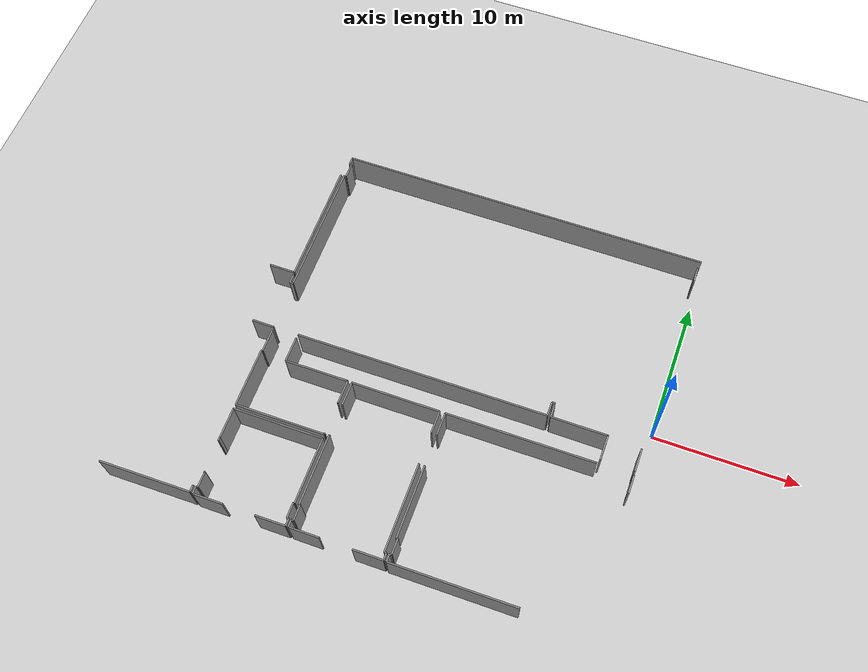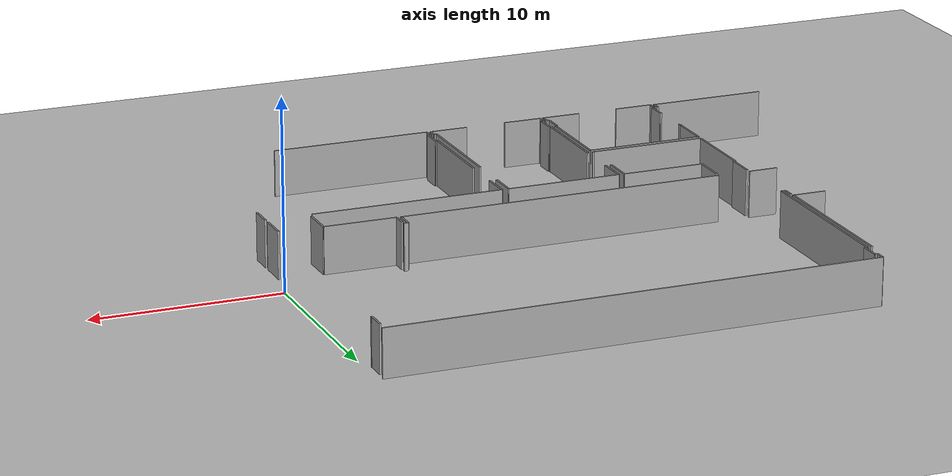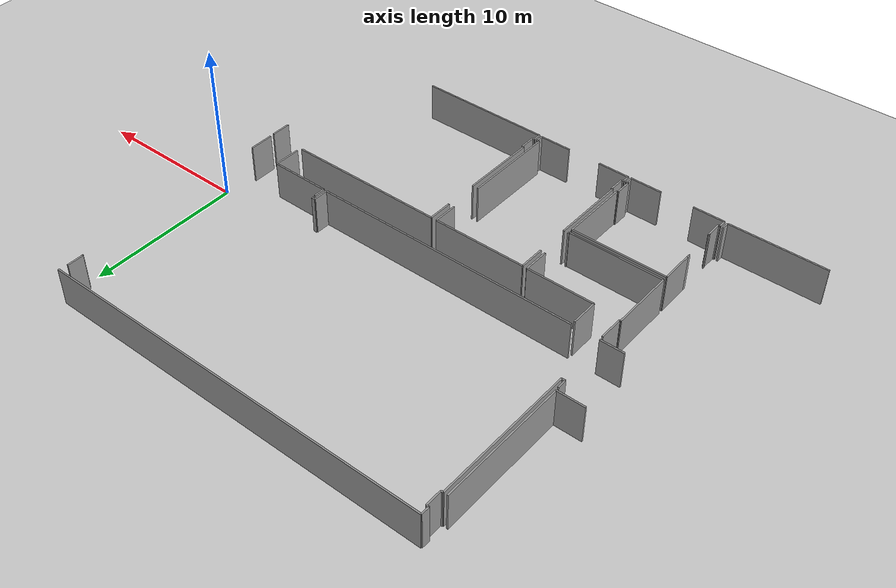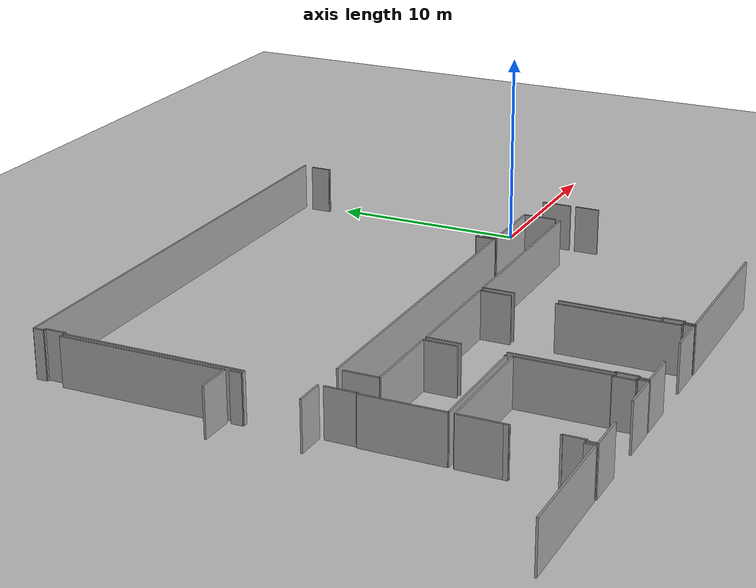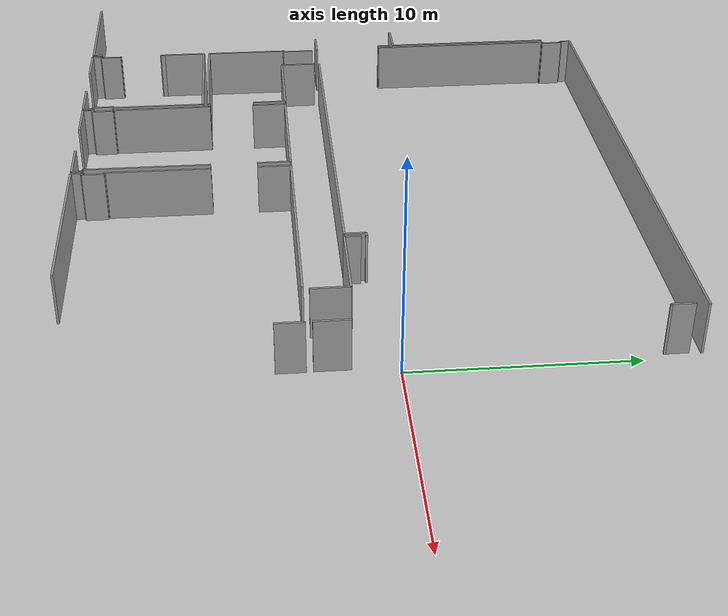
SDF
<sdf version="1.6">
 <world name="default">
  <model name="ground_plane">
   <static>1</static>
   <link name="link">
    <collision name="collision">
     <geometry><plane><normal>0 0 1</normal><size>100 100</size></plane></geometry>
     <surface><friction><ode><mu>100</mu><mu2>50</mu2></ode></friction></surface>
    </collision>
    <visual name="visual">
     <cast_shadows>0</cast_shadows>
     <geometry><plane><normal>0 0 1</normal><size>100 100</size></plane></geometry>
     <material>
      <script><uri>file://media/materials/scripts/gazebo.material</uri><name>Gazebo/Grey</name></script>
     </material>
    </visual>
   </link>
  </model>
  <model name="0510040946_A-40">
   <static>1</static>
   <link name="Wall_38">
    <collision name="Wall_38_Collision">
     <geometry><box><size>0.59646030045 0.1 2.5</size></box></geometry>
     <pose>0.298230150225 0 1.25 0 0 0</pose>
    </collision>
    <visual name="Wall_38_Visual">
     <pose>0.298230150225 0 1.25 0 0 0</pose>
     <geometry><box><size>0.59646030045 0.1 2.5</size></box></geometry>
     <material>
      <script><uri>file://media/materials/scripts/gazebo.material</uri><name>Gazebo/Grey</name></script>
      <ambient>1 1 1 1</ambient>
     </material>
    </visual>
    <pose>32.1014350305 -10.2270810478 0 0 0 -1.57079632679</pose>
   </link>
   <link name="Wall_39">
    <collision name="Wall_39_Collision">
     <geometry><box><size>0.224734776185 0.1 2.5</size></box></geometry>
     <pose>0.112367388092 0 1.25 0 0 0</pose>
    </collision>
    <visual name="Wall_39_Visual">
     <pose>0.112367388092 0 1.25 0 0 0</pose>
     <geometry><box><size>0.224734776185 0.1 2.5</size></box></geometry>
     <material>
      <script><uri>file://media/materials/scripts/gazebo.material</uri><name>Gazebo/Grey</name></script>
      <ambient>1 1 1 1</ambient>
     </material>
    </visual>
    <pose>32.1014350305 -10.8235413483 0 0 0 0.0</pose>
   </link>
   <link name="Wall_40">
    <collision name="Wall_40_Collision">
     <geometry><box><size>9.24266155983 0.1 2.5</size></box></geometry>
     <pose>4.62133077991 0 1.25 0 0 0</pose>
    </collision>
    <visual name="Wall_40_Visual">
     <pose>4.62133077991 0 1.25 0 0 0</pose>
     <geometry><box><size>9.24266155983 0.1 2.5</size></box></geometry>
     <material>
      <script><uri>file://media/materials/scripts/gazebo.material</uri><name>Gazebo/Grey</name></script>
      <ambient>1 1 1 1</ambient>
     </material>
    </visual>
    <pose>32.3261698067 -10.8235413483 0 0 0 1.57079632679</pose>
   </link>
   <link name="Wall_41">
    <collision name="Wall_41_Collision">
     <geometry><box><size>0.133293594678 0.1 2.5</size></box></geometry>
     <pose>0.0666467973392 0 1.25 0 0 0</pose>
    </collision>
    <visual name="Wall_41_Visual">
     <pose>0.0666467973392 0 1.25 0 0 0</pose>
     <geometry><box><size>0.133293594678 0.1 2.5</size></box></geometry>
     <material>
      <script><uri>file://media/materials/scripts/gazebo.material</uri><name>Gazebo/Grey</name></script>
      <ambient>1 1 1 1</ambient>
     </material>
    </visual>
    <pose>32.3261698067 -1.58087978846 0 0 0 0.0</pose>
   </link>
   <link name="Wall_42">
    <collision name="Wall_42_Collision">
     <geometry><box><size>1.05417350996 0.1 2.5</size></box></geometry>
     <pose>0.527086754979 0 1.25 0 0 0</pose>
    </collision>
    <visual name="Wall_42_Visual">
     <pose>0.527086754979 0 1.25 0 0 0</pose>
     <geometry><box><size>1.05417350996 0.1 2.5</size></box></geometry>
     <material>
      <script><uri>file://media/materials/scripts/gazebo.material</uri><name>Gazebo/Grey</name></script>
      <ambient>1 1 1 1</ambient>
     </material>
    </visual>
    <pose>32.4594634013 -1.58087978846 0 0 0 1.57079632679</pose>
   </link>
   <link name="Wall_43">
    <collision name="Wall_43_Collision">
     <geometry><box><size>0.153712499287 0.1 2.5</size></box></geometry>
     <pose>0.0768562496433 0 1.25 0 0 0</pose>
    </collision>
    <visual name="Wall_43_Visual">
     <pose>0.0768562496433 0 1.25 0 0 0</pose>
     <geometry><box><size>0.153712499287 0.1 2.5</size></box></geometry>
     <material>
      <script><uri>file://media/materials/scripts/gazebo.material</uri><name>Gazebo/Grey</name></script>
      <ambient>1 1 1 1</ambient>
     </material>
    </visual>
    <pose>32.4594634013 -0.526706278496 0 0 0 3.14159265359</pose>
   </link>
   <link name="Wall_44">
    <collision name="Wall_44_Collision">
     <geometry><box><size>0.522140560696 0.1 2.5</size></box></geometry>
     <pose>0.261070280348 0 1.25 0 0 0</pose>
    </collision>
    <visual name="Wall_44_Visual">
     <pose>0.261070280348 0 1.25 0 0 0</pose>
     <geometry><box><size>0.522140560696 0.1 2.5</size></box></geometry>
     <material>
      <script><uri>file://media/materials/scripts/gazebo.material</uri><name>Gazebo/Grey</name></script>
      <ambient>1 1 1 1</ambient>
     </material>
    </visual>
    <pose>32.305750902 -0.526706278496 0 0 0 1.57079632679</pose>
   </link>
   <link name="Wall_45">
    <collision name="Wall_45_Collision">
     <geometry><box><size>25.7516629993 0.1 2.5</size></box></geometry>
     <pose>12.8758314996 0 1.25 0 0 0</pose>
    </collision>
    <visual name="Wall_45_Visual">
     <pose>12.8758314996 0 1.25 0 0 0</pose>
     <geometry><box><size>25.7516629993 0.1 2.5</size></box></geometry>
     <material>
      <script><uri>file://media/materials/scripts/gazebo.material</uri><name>Gazebo/Grey</name></script>
      <ambient>1 1 1 1</ambient>
     </material>
    </visual>
    <pose>32.305750902 -0.00456571780059 0 0 0 0.0</pose>
   </link>
   <link name="Wall_48">
    <collision name="Wall_48_Collision">
     <geometry><box><size>1.04313969194 0.1 2.5</size></box></geometry>
     <pose>0.52156984597 0 1.25 0 0 0</pose>
    </collision>
    <visual name="Wall_48_Visual">
     <pose>0.52156984597 0 1.25 0 0 0</pose>
     <geometry><box><size>1.04313969194 0.1 2.5</size></box></geometry>
     <material>
      <script><uri>file://media/materials/scripts/gazebo.material</uri><name>Gazebo/Grey</name></script>
      <ambient>1 1 1 1</ambient>
     </material>
    </visual>
    <pose>57.9406076209 -0.53393533168 0 0 0 -1.57079632679</pose>
   </link>
   <link name="Wall_49">
    <collision name="Wall_49_Collision">
     <geometry><box><size>0.0630322707471 0.1 2.5</size></box></geometry>
     <pose>0.0315161353735 0 1.25 0 0 0</pose>
    </collision>
    <visual name="Wall_49_Visual">
     <pose>0.0315161353735 0 1.25 0 0 0</pose>
     <geometry><box><size>0.0630322707471 0.1 2.5</size></box></geometry>
     <material>
      <script><uri>file://media/materials/scripts/gazebo.material</uri><name>Gazebo/Grey</name></script>
      <ambient>1 1 1 1</ambient>
     </material>
    </visual>
    <pose>57.9406076209 -1.57707502362 0 0 0 0.0</pose>
   </link>
   <link name="Wall_54">
    <collision name="Wall_54_Collision">
     <geometry><box><size>0.227017635085 0.1 2.5</size></box></geometry>
     <pose>0.113508817543 0 1.25 0 0 0</pose>
    </collision>
    <visual name="Wall_54_Visual">
     <pose>0.113508817543 0 1.25 0 0 0</pose>
     <geometry><box><size>0.227017635085 0.1 2.5</size></box></geometry>
     <material>
      <script><uri>file://media/materials/scripts/gazebo.material</uri><name>Gazebo/Grey</name></script>
      <ambient>1 1 1 1</ambient>
     </material>
    </visual>
    <pose>51.7959124143 -13.3343056621 0 0 0 3.14159265359</pose>
   </link>
   <link name="Wall_55">
    <collision name="Wall_55_Collision">
     <geometry><box><size>0.969834556142 0.1 2.5</size></box></geometry>
     <pose>0.484917278071 0 1.25 0 0 0</pose>
    </collision>
    <visual name="Wall_55_Visual">
     <pose>0.484917278071 0 1.25 0 0 0</pose>
     <geometry><box><size>0.969834556142 0.1 2.5</size></box></geometry>
     <material>
      <script><uri>file://media/materials/scripts/gazebo.material</uri><name>Gazebo/Grey</name></script>
      <ambient>1 1 1 1</ambient>
     </material>
    </visual>
    <pose>51.5688947792 -13.3343056621 0 0 0 -1.57079632679</pose>
   </link>
   <link name="Wall_56">
    <collision name="Wall_56_Collision">
     <geometry><box><size>17.3943702163 0.1 2.5</size></box></geometry>
     <pose>8.69718510815 0 1.25 0 0 0</pose>
    </collision>
    <visual name="Wall_56_Visual">
     <pose>8.69718510815 0 1.25 0 0 0</pose>
     <geometry><box><size>17.3943702163 0.1 2.5</size></box></geometry>
     <material>
      <script><uri>file://media/materials/scripts/gazebo.material</uri><name>Gazebo/Grey</name></script>
      <ambient>1 1 1 1</ambient>
     </material>
    </visual>
    <pose>51.5688947792 -14.3041402183 0 0 0 3.14159265359</pose>
   </link>
   <link name="Wall_57">
    <collision name="Wall_57_Collision">
     <geometry><box><size>1.53446165748 0.1 2.5</size></box></geometry>
     <pose>0.767230828741 0 1.25 0 0 0</pose>
    </collision>
    <visual name="Wall_57_Visual">
     <pose>0.767230828741 0 1.25 0 0 0</pose>
     <geometry><box><size>1.53446165748 0.1 2.5</size></box></geometry>
     <material>
      <script><uri>file://media/materials/scripts/gazebo.material</uri><name>Gazebo/Grey</name></script>
      <ambient>1 1 1 1</ambient>
     </material>
    </visual>
    <pose>32.4150744783 -14.3041402183 0 0 0 3.14159265359</pose>
   </link>
   <link name="Wall_69">
    <collision name="Wall_69_Collision">
     <geometry><box><size>8.43808062297 0.1 2.5</size></box></geometry>
     <pose>4.21904031148 0 1.25 0 0 0</pose>
    </collision>
    <visual name="Wall_69_Visual">
     <pose>4.21904031148 0 1.25 0 0 0</pose>
     <geometry><box><size>8.43808062297 0.1 2.5</size></box></geometry>
     <material>
      <script><uri>file://media/materials/scripts/gazebo.material</uri><name>Gazebo/Grey</name></script>
      <ambient>1 1 1 1</ambient>
     </material>
    </visual>
    <pose>32.0701091333 -1.57327025879 0 0 0 -1.57079632679</pose>
   </link>
   <link name="Wall_70">
    <collision name="Wall_70_Collision">
     <geometry><box><size>1.78151772069 0.1 2.5</size></box></geometry>
     <pose>0.890758860346 0 1.25 0 0 0</pose>
    </collision>
    <visual name="Wall_70_Visual">
     <pose>0.890758860346 0 1.25 0 0 0</pose>
     <geometry><box><size>1.78151772069 0.1 2.5</size></box></geometry>
     <material>
      <script><uri>file://media/materials/scripts/gazebo.material</uri><name>Gazebo/Grey</name></script>
      <ambient>1 1 1 1</ambient>
     </material>
    </visual>
    <pose>32.0701091333 -10.0113508818 0 0 0 3.14159265359</pose>
   </link>
   <link name="Wall_87">
    <collision name="Wall_87_Collision">
     <geometry><box><size>0.47648338269 0.1 2.5</size></box></geometry>
     <pose>0.238241691345 0 1.25 0 0 0</pose>
    </collision>
    <visual name="Wall_87_Visual">
     <pose>0.238241691345 0 1.25 0 0 0</pose>
     <geometry><box><size>0.47648338269 0.1 2.5</size></box></geometry>
     <material>
      <script><uri>file://media/materials/scripts/gazebo.material</uri><name>Gazebo/Grey</name></script>
      <ambient>1 1 1 1</ambient>
     </material>
    </visual>
    <pose>32.1046056678 -26.16993348 0 0 0 -1.57079632679</pose>
   </link>
   <link name="Wall_88">
    <collision name="Wall_88_Collision">
     <geometry><box><size>6.29013112321 0.1 2.5</size></box></geometry>
     <pose>3.14506556161 0 1.25 0 0 0</pose>
    </collision>
    <visual name="Wall_88_Visual">
     <pose>3.14506556161 0 1.25 0 0 0</pose>
     <geometry><box><size>6.29013112321 0.1 2.5</size></box></geometry>
     <material>
      <script><uri>file://media/materials/scripts/gazebo.material</uri><name>Gazebo/Grey</name></script>
      <ambient>1 1 1 1</ambient>
     </material>
    </visual>
    <pose>32.1046056678 -26.6464168627 0 0 0 -3.13612855764</pose>
   </link>
   <link name="Wall_89">
    <collision name="Wall_89_Collision">
     <geometry><box><size>2.13802418562 0.1 2.5</size></box></geometry>
     <pose>1.06901209281 0 1.25 0 0 0</pose>
    </collision>
    <visual name="Wall_89_Visual">
     <pose>1.06901209281 0 1.25 0 0 0</pose>
     <geometry><box><size>2.13802418562 0.1 2.5</size></box></geometry>
     <material>
      <script><uri>file://media/materials/scripts/gazebo.material</uri><name>Gazebo/Grey</name></script>
      <ambient>1 1 1 1</ambient>
     </material>
    </visual>
    <pose>32.3372036247 -22.7155874874 0 0 0 1.57079632679</pose>
   </link>
   <link name="Wall_90">
    <collision name="Wall_90_Collision">
     <geometry><box><size>6.21774669144 0.1 2.5</size></box></geometry>
     <pose>3.10887334572 0 1.25 0 0 0</pose>
    </collision>
    <visual name="Wall_90_Visual">
     <pose>3.10887334572 0 1.25 0 0 0</pose>
     <geometry><box><size>6.21774669144 0.1 2.5</size></box></geometry>
     <material>
      <script><uri>file://media/materials/scripts/gazebo.material</uri><name>Gazebo/Grey</name></script>
      <ambient>1 1 1 1</ambient>
     </material>
    </visual>
    <pose>32.3372036247 -20.5775633018 0 0 0 0.0</pose>
   </link>
   <link name="Wall_91">
    <collision name="Wall_91_Collision">
     <geometry><box><size>4.5655909751 0.1 2.5</size></box></geometry>
     <pose>2.28279548755 0 1.25 0 0 0</pose>
    </collision>
    <visual name="Wall_91_Visual">
     <pose>2.28279548755 0 1.25 0 0 0</pose>
     <geometry><box><size>4.5655909751 0.1 2.5</size></box></geometry>
     <material>
      <script><uri>file://media/materials/scripts/gazebo.material</uri><name>Gazebo/Grey</name></script>
      <ambient>1 1 1 1</ambient>
     </material>
    </visual>
    <pose>38.5549503161 -20.5775633018 0 0 0 -1.57079632679</pose>
   </link>
   <link name="Wall_92">
    <collision name="Wall_92_Collision">
     <geometry><box><size>0.0824365713996 0.1 2.5</size></box></geometry>
     <pose>0.0412182856998 0 1.25 0 0 0</pose>
    </collision>
    <visual name="Wall_92_Visual">
     <pose>0.0412182856998 0 1.25 0 0 0</pose>
     <geometry><box><size>0.0824365713996 0.1 2.5</size></box></geometry>
     <material>
      <script><uri>file://media/materials/scripts/gazebo.material</uri><name>Gazebo/Grey</name></script>
      <ambient>1 1 1 1</ambient>
     </material>
    </visual>
    <pose>38.5549503161 -25.1431542769 0 0 0 3.14159265359</pose>
   </link>
   <link name="Wall_93">
    <collision name="Wall_93_Collision">
     <geometry><box><size>1.04377381941 0.1 2.5</size></box></geometry>
     <pose>0.521886909707 0 1.25 0 0 0</pose>
    </collision>
    <visual name="Wall_93_Visual">
     <pose>0.521886909707 0 1.25 0 0 0</pose>
     <geometry><box><size>1.04377381941 0.1 2.5</size></box></geometry>
     <material>
      <script><uri>file://media/materials/scripts/gazebo.material</uri><name>Gazebo/Grey</name></script>
      <ambient>1 1 1 1</ambient>
     </material>
    </visual>
    <pose>38.4725137447 -25.1431542769 0 0 0 -1.57079632679</pose>
   </link>
   <link name="Wall_94">
    <collision name="Wall_94_Collision">
     <geometry><box><size>0.134561849623 0.1 2.5</size></box></geometry>
     <pose>0.0672809248115 0 1.25 0 0 0</pose>
    </collision>
    <visual name="Wall_94_Visual">
     <pose>0.0672809248115 0 1.25 0 0 0</pose>
     <geometry><box><size>0.134561849623 0.1 2.5</size></box></geometry>
     <material>
      <script><uri>file://media/materials/scripts/gazebo.material</uri><name>Gazebo/Grey</name></script>
      <ambient>1 1 1 1</ambient>
     </material>
    </visual>
    <pose>38.4725137447 -26.1869280963 0 0 0 0.0</pose>
   </link>
   <link name="Wall_95">
    <collision name="Wall_95_Collision">
     <geometry><box><size>0.497409589276 0.1 2.5</size></box></geometry>
     <pose>0.248704794638 0 1.25 0 0 0</pose>
    </collision>
    <visual name="Wall_95_Visual">
     <pose>0.248704794638 0 1.25 0 0 0</pose>
     <geometry><box><size>0.497409589276 0.1 2.5</size></box></geometry>
     <material>
      <script><uri>file://media/materials/scripts/gazebo.material</uri><name>Gazebo/Grey</name></script>
      <ambient>1 1 1 1</ambient>
     </material>
    </visual>
    <pose>38.6070755943 -26.1869280963 0 0 0 -1.57079632679</pose>
   </link>
   <link name="Wall_96">
    <collision name="Wall_96_Collision">
     <geometry><box><size>2.0766406463 0.1 2.5</size></box></geometry>
     <pose>1.03832032315 0 1.25 0 0 0</pose>
    </collision>
    <visual name="Wall_96_Visual">
     <pose>1.03832032315 0 1.25 0 0 0</pose>
     <geometry><box><size>2.0766406463 0.1 2.5</size></box></geometry>
     <material>
      <script><uri>file://media/materials/scripts/gazebo.material</uri><name>Gazebo/Grey</name></script>
      <ambient>1 1 1 1</ambient>
     </material>
    </visual>
    <pose>38.6070755943 -26.6843376856 0 0 0 3.14159265359</pose>
   </link>
   <link name="Wall_97">
    <collision name="Wall_97_Collision">
     <geometry><box><size>2.04544157467 0.1 2.5</size></box></geometry>
     <pose>1.02272078733 0 1.25 0 0 0</pose>
    </collision>
    <visual name="Wall_97_Visual">
     <pose>1.02272078733 0 1.25 0 0 0</pose>
     <geometry><box><size>2.04544157467 0.1 2.5</size></box></geometry>
     <material>
      <script><uri>file://media/materials/scripts/gazebo.material</uri><name>Gazebo/Grey</name></script>
      <ambient>1 1 1 1</ambient>
     </material>
    </visual>
    <pose>34.3533485101 -26.6843376856 0 0 0 3.14159265359</pose>
   </link>
   <link name="Wall_98">
    <collision name="Wall_98_Collision">
     <geometry><box><size>0.494999904881 0.1 2.5</size></box></geometry>
     <pose>0.24749995244 0 1.25 0 0 0</pose>
    </collision>
    <visual name="Wall_98_Visual">
     <pose>0.24749995244 0 1.25 0 0 0</pose>
     <geometry><box><size>0.494999904881 0.1 2.5</size></box></geometry>
     <material>
      <script><uri>file://media/materials/scripts/gazebo.material</uri><name>Gazebo/Grey</name></script>
      <ambient>1 1 1 1</ambient>
     </material>
    </visual>
    <pose>32.3079069355 -26.6843376856 0 0 0 1.57079632679</pose>
   </link>
   <link name="Wall_99">
    <collision name="Wall_99_Collision">
     <geometry><box><size>0.123908508088 0.1 2.5</size></box></geometry>
     <pose>0.0619542540441 0 1.25 0 0 0</pose>
    </collision>
    <visual name="Wall_99_Visual">
     <pose>0.0619542540441 0 1.25 0 0 0</pose>
     <geometry><box><size>0.123908508088 0.1 2.5</size></box></geometry>
     <material>
      <script><uri>file://media/materials/scripts/gazebo.material</uri><name>Gazebo/Grey</name></script>
      <ambient>1 1 1 1</ambient>
     </material>
    </visual>
    <pose>32.3079069355 -26.1893377807 0 0 0 0.0</pose>
   </link>
   <link name="Wall_100">
    <collision name="Wall_100_Collision">
     <geometry><box><size>1.04973461765 0.1 2.5</size></box></geometry>
     <pose>0.524867308826 0 1.25 0 0 0</pose>
    </collision>
    <visual name="Wall_100_Visual">
     <pose>0.524867308826 0 1.25 0 0 0</pose>
     <geometry><box><size>1.04973461765 0.1 2.5</size></box></geometry>
     <material>
      <script><uri>file://media/materials/scripts/gazebo.material</uri><name>Gazebo/Grey</name></script>
      <ambient>1 1 1 1</ambient>
     </material>
    </visual>
    <pose>32.4318154435 -26.1893377807 0 0 0 1.57079632679</pose>
   </link>
   <link name="Wall_101">
    <collision name="Wall_101_Collision">
     <geometry><box><size>0.0710222768981 0.1 2.5</size></box></geometry>
     <pose>0.0355111384491 0 1.25 0 0 0</pose>
    </collision>
    <visual name="Wall_101_Visual">
     <pose>0.0355111384491 0 1.25 0 0 0</pose>
     <geometry><box><size>0.0710222768981 0.1 2.5</size></box></geometry>
     <material>
      <script><uri>file://media/materials/scripts/gazebo.material</uri><name>Gazebo/Grey</name></script>
      <ambient>1 1 1 1</ambient>
     </material>
    </visual>
    <pose>32.4318154435 -25.139603163 0 0 0 3.14159265359</pose>
   </link>
   <link name="Wall_102">
    <collision name="Wall_102_Collision">
     <geometry><box><size>0.0205457301027 0.1 2.5</size></box></geometry>
     <pose>0.0102728650513 0 1.25 0 0 0</pose>
    </collision>
    <visual name="Wall_102_Visual">
     <pose>0.0102728650513 0 1.25 0 0 0</pose>
     <geometry><box><size>0.0205457301027 0.1 2.5</size></box></geometry>
     <material>
      <script><uri>file://media/materials/scripts/gazebo.material</uri><name>Gazebo/Grey</name></script>
      <ambient>1 1 1 1</ambient>
     </material>
    </visual>
    <pose>32.3607931666 -22.9328395594 0 0 0 3.14159265359</pose>
   </link>
   <link name="Wall_103">
    <collision name="Wall_103_Collision">
     <geometry><box><size>0.21727339364 0.1 2.5</size></box></geometry>
     <pose>0.10863669682 0 1.25 0 0 0</pose>
    </collision>
    <visual name="Wall_103_Visual">
     <pose>0.10863669682 0 1.25 0 0 0</pose>
     <geometry><box><size>0.21727339364 0.1 2.5</size></box></geometry>
     <material>
      <script><uri>file://media/materials/scripts/gazebo.material</uri><name>Gazebo/Grey</name></script>
      <ambient>1 1 1 1</ambient>
     </material>
    </visual>
    <pose>32.3402474365 -22.9328395594 0 0 0 1.58480591806</pose>
   </link>
   <link name="Wall_104">
    <collision name="Wall_104_Collision">
     <geometry><box><size>4.13413064294 0.1 2.5</size></box></geometry>
     <pose>2.06706532147 0 1.25 0 0 0</pose>
    </collision>
    <visual name="Wall_104_Visual">
     <pose>2.06706532147 0 1.25 0 0 0</pose>
     <geometry><box><size>4.13413064294 0.1 2.5</size></box></geometry>
     <material>
      <script><uri>file://media/materials/scripts/gazebo.material</uri><name>Gazebo/Grey</name></script>
      <ambient>1 1 1 1</ambient>
     </material>
    </visual>
    <pose>32.3443058524 -20.2871329195 0 0 0 1.57079632679</pose>
   </link>
   <link name="Wall_105">
    <collision name="Wall_105_Collision">
     <geometry><box><size>0.0823097459051 0.1 2.5</size></box></geometry>
     <pose>0.0411548729526 0 1.25 0 0 0</pose>
    </collision>
    <visual name="Wall_105_Visual">
     <pose>0.0411548729526 0 1.25 0 0 0</pose>
     <geometry><box><size>0.0823097459051 0.1 2.5</size></box></geometry>
     <material>
      <script><uri>file://media/materials/scripts/gazebo.material</uri><name>Gazebo/Grey</name></script>
      <ambient>1 1 1 1</ambient>
     </material>
    </visual>
    <pose>32.3443058524 -16.1530022765 0 0 0 0.0</pose>
   </link>
   <link name="Wall_106">
    <collision name="Wall_106_Collision">
     <geometry><box><size>1.58455772779 0.1 2.5</size></box></geometry>
     <pose>0.792278863897 0 1.25 0 0 0</pose>
    </collision>
    <visual name="Wall_106_Visual">
     <pose>0.792278863897 0 1.25 0 0 0</pose>
     <geometry><box><size>1.58455772779 0.1 2.5</size></box></geometry>
     <material>
      <script><uri>file://media/materials/scripts/gazebo.material</uri><name>Gazebo/Grey</name></script>
      <ambient>1 1 1 1</ambient>
     </material>
    </visual>
    <pose>32.4266155983 -16.1530022765 0 0 0 1.57079632679</pose>
   </link>
   <link name="Wall_107">
    <collision name="Wall_107_Collision">
     <geometry><box><size>1.76097199059 0.1 2.5</size></box></geometry>
     <pose>0.880485995295 0 1.25 0 0 0</pose>
    </collision>
    <visual name="Wall_107_Visual">
     <pose>0.880485995295 0 1.25 0 0 0</pose>
     <geometry><box><size>1.76097199059 0.1 2.5</size></box></geometry>
     <material>
      <script><uri>file://media/materials/scripts/gazebo.material</uri><name>Gazebo/Grey</name></script>
      <ambient>1 1 1 1</ambient>
     </material>
    </visual>
    <pose>34.1553739133 -14.5684445487 0 0 0 -1.57079632679</pose>
   </link>
   <link name="Wall_108">
    <collision name="Wall_108_Collision">
     <geometry><box><size>4.38410369252 0.1 2.5</size></box></geometry>
     <pose>2.19205184626 0 1.25 0 0 0</pose>
    </collision>
    <visual name="Wall_108_Visual">
     <pose>2.19205184626 0 1.25 0 0 0</pose>
     <geometry><box><size>4.38410369252 0.1 2.5</size></box></geometry>
     <material>
      <script><uri>file://media/materials/scripts/gazebo.material</uri><name>Gazebo/Grey</name></script>
      <ambient>1 1 1 1</ambient>
     </material>
    </visual>
    <pose>34.1553739133 -16.3294165393 0 0 0 0.0</pose>
   </link>
   <link name="Wall_109">
    <collision name="Wall_109_Collision">
     <geometry><box><size>1.66636017172 0.1 2.5</size></box></geometry>
     <pose>0.833180085861 0 1.25 0 0 0</pose>
    </collision>
    <visual name="Wall_109_Visual">
     <pose>0.833180085861 0 1.25 0 0 0</pose>
     <geometry><box><size>1.66636017172 0.1 2.5</size></box></geometry>
     <material>
      <script><uri>file://media/materials/scripts/gazebo.material</uri><name>Gazebo/Grey</name></script>
      <ambient>1 1 1 1</ambient>
     </material>
    </visual>
    <pose>38.5394776058 -16.3294165393 0 0 0 -1.57079632679</pose>
   </link>
   <link name="Wall_110">
    <collision name="Wall_110_Collision">
     <geometry><box><size>0.0942313423844 0.1 2.5</size></box></geometry>
     <pose>0.0471156711922 0 1.25 0 0 0</pose>
    </collision>
    <visual name="Wall_110_Visual">
     <pose>0.0471156711922 0 1.25 0 0 0</pose>
     <geometry><box><size>0.0942313423844 0.1 2.5</size></box></geometry>
     <material>
      <script><uri>file://media/materials/scripts/gazebo.material</uri><name>Gazebo/Grey</name></script>
      <ambient>1 1 1 1</ambient>
     </material>
    </visual>
    <pose>38.5394776058 -20.1921406241 0 0 0 -1.57079632679</pose>
   </link>
   <link name="Wall_111">
    <collision name="Wall_111_Collision">
     <geometry><box><size>6.19517180016 0.1 2.5</size></box></geometry>
     <pose>3.09758590008 0 1.25 0 0 0</pose>
    </collision>
    <visual name="Wall_111_Visual">
     <pose>3.09758590008 0 1.25 0 0 0</pose>
     <geometry><box><size>6.19517180016 0.1 2.5</size></box></geometry>
     <material>
      <script><uri>file://media/materials/scripts/gazebo.material</uri><name>Gazebo/Grey</name></script>
      <ambient>1 1 1 1</ambient>
     </material>
    </visual>
    <pose>38.5394776058 -20.2863719665 0 0 0 -3.14146982359</pose>
   </link>
   <link name="Wall_112">
    <collision name="Wall_112_Collision">
     <geometry><box><size>0.482444180929 0.1 2.5</size></box></geometry>
     <pose>0.241222090465 0 1.25 0 0 0</pose>
    </collision>
    <visual name="Wall_112_Visual">
     <pose>0.241222090465 0 1.25 0 0 0</pose>
     <geometry><box><size>0.482444180929 0.1 2.5</size></box></geometry>
     <material>
      <script><uri>file://media/materials/scripts/gazebo.material</uri><name>Gazebo/Grey</name></script>
      <ambient>1 1 1 1</ambient>
     </material>
    </visual>
    <pose>38.7869141455 -26.6748257735 0 0 0 1.57079632679</pose>
   </link>
   <link name="Wall_113">
    <collision name="Wall_113_Collision">
     <geometry><box><size>0.137098359512 0.1 2.5</size></box></geometry>
     <pose>0.0685491797561 0 1.25 0 0 0</pose>
    </collision>
    <visual name="Wall_113_Visual">
     <pose>0.0685491797561 0 1.25 0 0 0</pose>
     <geometry><box><size>0.137098359512 0.1 2.5</size></box></geometry>
     <material>
      <script><uri>file://media/materials/scripts/gazebo.material</uri><name>Gazebo/Grey</name></script>
      <ambient>1 1 1 1</ambient>
     </material>
    </visual>
    <pose>38.7869141455 -26.1923815925 0 0 0 0.0</pose>
   </link>
   <link name="Wall_114">
    <collision name="Wall_114_Collision">
     <geometry><box><size>1.06292446908 0.1 2.5</size></box></geometry>
     <pose>0.531462234538 0 1.25 0 0 0</pose>
    </collision>
    <visual name="Wall_114_Visual">
     <pose>0.531462234538 0 1.25 0 0 0</pose>
     <geometry><box><size>1.06292446908 0.1 2.5</size></box></geometry>
     <material>
      <script><uri>file://media/materials/scripts/gazebo.material</uri><name>Gazebo/Grey</name></script>
      <ambient>1 1 1 1</ambient>
     </material>
    </visual>
    <pose>38.924012505 -26.1923815925 0 0 0 1.57079632679</pose>
   </link>
   <link name="Wall_115">
    <collision name="Wall_115_Collision">
     <geometry><box><size>0.0760952966765 0.1 2.5</size></box></geometry>
     <pose>0.0380476483383 0 1.25 0 0 0</pose>
    </collision>
    <visual name="Wall_115_Visual">
     <pose>0.0380476483383 0 1.25 0 0 0</pose>
     <geometry><box><size>0.0760952966765 0.1 2.5</size></box></geometry>
     <material>
      <script><uri>file://media/materials/scripts/gazebo.material</uri><name>Gazebo/Grey</name></script>
      <ambient>1 1 1 1</ambient>
     </material>
    </visual>
    <pose>38.924012505 -25.1294571235 0 0 0 3.14159265359</pose>
   </link>
   <link name="Wall_116">
    <collision name="Wall_116_Collision">
     <geometry><box><size>4.92881919123 0.1 2.5</size></box></geometry>
     <pose>2.46440959562 0 1.25 0 0 0</pose>
    </collision>
    <visual name="Wall_116_Visual">
     <pose>2.46440959562 0 1.25 0 0 0</pose>
     <geometry><box><size>4.92881919123 0.1 2.5</size></box></geometry>
     <material>
      <script><uri>file://media/materials/scripts/gazebo.material</uri><name>Gazebo/Grey</name></script>
      <ambient>1 1 1 1</ambient>
     </material>
    </visual>
    <pose>38.8479172083 -25.1294571235 0 0 0 1.57079632679</pose>
   </link>
   <link name="Wall_117">
    <collision name="Wall_117_Collision">
     <geometry><box><size>1.67714033875 0.1 2.5</size></box></geometry>
     <pose>0.838570169375 0 1.25 0 0 0</pose>
    </collision>
    <visual name="Wall_117_Visual">
     <pose>0.838570169375 0 1.25 0 0 0</pose>
     <geometry><box><size>1.67714033875 0.1 2.5</size></box></geometry>
     <material>
      <script><uri>file://media/materials/scripts/gazebo.material</uri><name>Gazebo/Grey</name></script>
      <ambient>1 1 1 1</ambient>
     </material>
    </visual>
    <pose>38.8479172083 -18.0220295884 0 0 0 1.57079632679</pose>
   </link>
   <link name="Wall_118">
    <collision name="Wall_118_Collision">
     <geometry><box><size>6.08990659302 0.1 2.5</size></box></geometry>
     <pose>3.04495329651 0 1.25 0 0 0</pose>
    </collision>
    <visual name="Wall_118_Visual">
     <pose>3.04495329651 0 1.25 0 0 0</pose>
     <geometry><box><size>6.08990659302 0.1 2.5</size></box></geometry>
     <material>
      <script><uri>file://media/materials/scripts/gazebo.material</uri><name>Gazebo/Grey</name></script>
      <ambient>1 1 1 1</ambient>
     </material>
    </visual>
    <pose>38.8479172083 -16.3448892496 0 0 0 0.0</pose>
   </link>
   <link name="Wall_119">
    <collision name="Wall_119_Collision">
     <geometry><box><size>1.58481137878 0.1 2.5</size></box></geometry>
     <pose>0.792405689392 0 1.25 0 0 0</pose>
    </collision>
    <visual name="Wall_119_Visual">
     <pose>0.792405689392 0 1.25 0 0 0</pose>
     <geometry><box><size>1.58481137878 0.1 2.5</size></box></geometry>
     <material>
      <script><uri>file://media/materials/scripts/gazebo.material</uri><name>Gazebo/Grey</name></script>
      <ambient>1 1 1 1</ambient>
     </material>
    </visual>
    <pose>44.9378238013 -16.3448892496 0 0 0 -1.57079632679</pose>
   </link>
   <link name="Wall_120">
    <collision name="Wall_120_Collision">
     <geometry><box><size>6.04729322688 0.1 2.5</size></box></geometry>
     <pose>3.02364661344 0 1.25 0 0 0</pose>
    </collision>
    <visual name="Wall_120_Visual">
     <pose>3.02364661344 0 1.25 0 0 0</pose>
     <geometry><box><size>6.04729322688 0.1 2.5</size></box></geometry>
     <material>
      <script><uri>file://media/materials/scripts/gazebo.material</uri><name>Gazebo/Grey</name></script>
      <ambient>1 1 1 1</ambient>
     </material>
    </visual>
    <pose>44.9378238013 -20.1341813731 0 0 0 -1.57079632679</pose>
   </link>
   <link name="Wall_121">
    <collision name="Wall_121_Collision">
     <geometry><box><size>0.149019955992 0.1 2.5</size></box></geometry>
     <pose>0.0745099779958 0 1.25 0 0 0</pose>
    </collision>
    <visual name="Wall_121_Visual">
     <pose>0.0745099779958 0 1.25 0 0 0</pose>
     <geometry><box><size>0.149019955992 0.1 2.5</size></box></geometry>
     <material>
      <script><uri>file://media/materials/scripts/gazebo.material</uri><name>Gazebo/Grey</name></script>
      <ambient>1 1 1 1</ambient>
     </material>
    </visual>
    <pose>44.9378238013 -26.1814746 0 0 0 0.0</pose>
   </link>
   <link name="Wall_122">
    <collision name="Wall_122_Collision">
     <geometry><box><size>0.498931495209 0.1 2.5</size></box></geometry>
     <pose>0.249465747605 0 1.25 0 0 0</pose>
    </collision>
    <visual name="Wall_122_Visual">
     <pose>0.249465747605 0 1.25 0 0 0</pose>
     <geometry><box><size>0.498931495209 0.1 2.5</size></box></geometry>
     <material>
      <script><uri>file://media/materials/scripts/gazebo.material</uri><name>Gazebo/Grey</name></script>
      <ambient>1 1 1 1</ambient>
     </material>
    </visual>
    <pose>45.0868437573 -26.1814746 0 0 0 -1.57079632679</pose>
   </link>
   <link name="Wall_123">
    <collision name="Wall_123_Collision">
     <geometry><box><size>2.0560949162 0.1 2.5</size></box></geometry>
     <pose>1.0280474581 0 1.25 0 0 0</pose>
    </collision>
    <visual name="Wall_123_Visual">
     <pose>1.0280474581 0 1.25 0 0 0</pose>
     <geometry><box><size>2.0560949162 0.1 2.5</size></box></geometry>
     <material>
      <script><uri>file://media/materials/scripts/gazebo.material</uri><name>Gazebo/Grey</name></script>
      <ambient>1 1 1 1</ambient>
     </material>
    </visual>
    <pose>45.0868437573 -26.6804060952 0 0 0 3.14159265359</pose>
   </link>
   <link name="Wall_124">
    <collision name="Wall_124_Collision">
     <geometry><box><size>2.06168279005 0.1 2.5</size></box></geometry>
     <pose>1.03084139503 0 1.25 0 0 0</pose>
    </collision>
    <visual name="Wall_124_Visual">
     <pose>1.03084139503 0 1.25 0 0 0</pose>
     <geometry><box><size>2.06168279005 0.1 2.5</size></box></geometry>
     <material>
      <script><uri>file://media/materials/scripts/gazebo.material</uri><name>Gazebo/Grey</name></script>
      <ambient>1 1 1 1</ambient>
     </material>
    </visual>
    <pose>40.8485893834 -26.6804060952 0 0 0 3.13888596729</pose>
   </link>
   <link name="Wall_125">
    <collision name="Wall_125_Collision">
     <geometry><box><size>0.525311198057 0.1 2.5</size></box></geometry>
     <pose>0.262655599029 0 1.25 0 0 0</pose>
    </collision>
    <visual name="Wall_125_Visual">
     <pose>0.262655599029 0 1.25 0 0 0</pose>
     <geometry><box><size>0.525311198057 0.1 2.5</size></box></geometry>
     <material>
      <script><uri>file://media/materials/scripts/gazebo.material</uri><name>Gazebo/Grey</name></script>
      <ambient>1 1 1 1</ambient>
     </material>
    </visual>
    <pose>45.2820281933 -26.7099564354 0 0 0 1.57079632679</pose>
   </link>
   <link name="Wall_126">
    <collision name="Wall_126_Collision">
     <geometry><box><size>0.141790902807 0.1 2.5</size></box></geometry>
     <pose>0.0708954514036 0 1.25 0 0 0</pose>
    </collision>
    <visual name="Wall_126_Visual">
     <pose>0.0708954514036 0 1.25 0 0 0</pose>
     <geometry><box><size>0.141790902807 0.1 2.5</size></box></geometry>
     <material>
      <script><uri>file://media/materials/scripts/gazebo.material</uri><name>Gazebo/Grey</name></script>
      <ambient>1 1 1 1</ambient>
     </material>
    </visual>
    <pose>45.2820281933 -26.1846452374 0 0 0 0.0</pose>
   </link>
   <link name="Wall_127">
    <collision name="Wall_127_Collision">
     <geometry><box><size>1.05911970424 0.1 2.5</size></box></geometry>
     <pose>0.529559852121 0 1.25 0 0 0</pose>
    </collision>
    <visual name="Wall_127_Visual">
     <pose>0.529559852121 0 1.25 0 0 0</pose>
     <geometry><box><size>1.05911970424 0.1 2.5</size></box></geometry>
     <material>
      <script><uri>file://media/materials/scripts/gazebo.material</uri><name>Gazebo/Grey</name></script>
      <ambient>1 1 1 1</ambient>
     </material>
    </visual>
    <pose>45.4238190961 -26.1846452374 0 0 0 1.57079632679</pose>
   </link>
   <link name="Wall_128">
    <collision name="Wall_128_Collision">
     <geometry><box><size>0.108435797764 0.1 2.5</size></box></geometry>
     <pose>0.054217898882 0 1.25 0 0 0</pose>
    </collision>
    <visual name="Wall_128_Visual">
     <pose>0.054217898882 0 1.25 0 0 0</pose>
     <geometry><box><size>0.108435797764 0.1 2.5</size></box></geometry>
     <material>
      <script><uri>file://media/materials/scripts/gazebo.material</uri><name>Gazebo/Grey</name></script>
      <ambient>1 1 1 1</ambient>
     </material>
    </visual>
    <pose>45.4238190961 -25.1255255331 0 0 0 3.14159265359</pose>
   </link>
   <link name="Wall_129">
    <collision name="Wall_129_Collision">
     <geometry><box><size>4.99502209934 0.1 2.5</size></box></geometry>
     <pose>2.49751104967 0 1.25 0 0 0</pose>
    </collision>
    <visual name="Wall_129_Visual">
     <pose>2.49751104967 0 1.25 0 0 0</pose>
     <geometry><box><size>4.99502209934 0.1 2.5</size></box></geometry>
     <material>
      <script><uri>file://media/materials/scripts/gazebo.material</uri><name>Gazebo/Grey</name></script>
      <ambient>1 1 1 1</ambient>
     </material>
    </visual>
    <pose>45.3153832984 -25.1255255331 0 0 0 1.57079632679</pose>
   </link>
   <link name="Wall_130">
    <collision name="Wall_130_Collision">
     <geometry><box><size>1.58785519065 0.1 2.5</size></box></geometry>
     <pose>0.793927595325 0 1.25 0 0 0</pose>
    </collision>
    <visual name="Wall_130_Visual">
     <pose>0.793927595325 0 1.25 0 0 0</pose>
     <geometry><box><size>1.58785519065 0.1 2.5</size></box></geometry>
     <material>
      <script><uri>file://media/materials/scripts/gazebo.material</uri><name>Gazebo/Grey</name></script>
      <ambient>1 1 1 1</ambient>
     </material>
    </visual>
    <pose>45.3153832984 -17.9349004737 0 0 0 1.57079632679</pose>
   </link>
   <link name="Wall_131">
    <collision name="Wall_131_Collision">
     <geometry><box><size>10.1986721371 0.1 2.5</size></box></geometry>
     <pose>5.09933606854 0 1.25 0 0 0</pose>
    </collision>
    <visual name="Wall_131_Visual">
     <pose>5.09933606854 0 1.25 0 0 0</pose>
     <geometry><box><size>10.1986721371 0.1 2.5</size></box></geometry>
     <material>
      <script><uri>file://media/materials/scripts/gazebo.material</uri><name>Gazebo/Grey</name></script>
      <ambient>1 1 1 1</ambient>
     </material>
    </visual>
    <pose>45.3153832984 -16.347045283 0 0 0 0.0</pose>
   </link>
   <link name="Wall_132">
    <collision name="Wall_132_Collision">
     <geometry><box><size>1.27091827999 0.1 2.5</size></box></geometry>
     <pose>0.635459139996 0 1.25 0 0 0</pose>
    </collision>
    <visual name="Wall_132_Visual">
     <pose>0.635459139996 0 1.25 0 0 0</pose>
     <geometry><box><size>1.27091827999 0.1 2.5</size></box></geometry>
     <material>
      <script><uri>file://media/materials/scripts/gazebo.material</uri><name>Gazebo/Grey</name></script>
      <ambient>1 1 1 1</ambient>
     </material>
    </visual>
    <pose>57.9477098486 -16.347045283 0 0 0 -1.57079632679</pose>
   </link>
   <link name="Wall_137">
    <collision name="Wall_137_Collision">
     <geometry><box><size>8.55058906632 0.1 2.5</size></box></geometry>
     <pose>4.27529453316 0 1.25 0 0 0</pose>
    </collision>
    <visual name="Wall_137_Visual">
     <pose>4.27529453316 0 1.25 0 0 0</pose>
     <geometry><box><size>8.55058906632 0.1 2.5</size></box></geometry>
     <material>
      <script><uri>file://media/materials/scripts/gazebo.material</uri><name>Gazebo/Grey</name></script>
      <ambient>1 1 1 1</ambient>
     </material>
    </visual>
    <pose>53.8326030299 -26.6943568996 0 0 0 -3.13976827116</pose>
   </link>
   <link name="Wall_138">
    <collision name="Wall_138_Collision">
     <geometry><box><size>0.739646283696 0.1 2.5</size></box></geometry>
     <pose>0.369823141848 0 1.25 0 0 0</pose>
    </collision>
    <visual name="Wall_138_Visual">
     <pose>0.369823141848 0 1.25 0 0 0</pose>
     <geometry><box><size>0.739646283696 0.1 2.5</size></box></geometry>
     <material>
      <script><uri>file://media/materials/scripts/gazebo.material</uri><name>Gazebo/Grey</name></script>
      <ambient>1 1 1 1</ambient>
     </material>
    </visual>
    <pose>51.7959124143 -14.3185983246 0 0 0 1.57079632679</pose>
   </link>
   <link name="Wall_142">
    <collision name="Wall_142_Collision">
     <geometry><box><size>1.56857771549 0.1 2.5</size></box></geometry>
     <pose>0.784288857746 0 1.25 0 0 0</pose>
    </collision>
    <visual name="Wall_142_Visual">
     <pose>0.784288857746 0 1.25 0 0 0</pose>
     <geometry><box><size>1.56857771549 0.1 2.5</size></box></geometry>
     <material>
      <script><uri>file://media/materials/scripts/gazebo.material</uri><name>Gazebo/Grey</name></script>
      <ambient>1 1 1 1</ambient>
     </material>
    </visual>
    <pose>57.9255153871 -14.4985637013 0 0 0 -1.57079632679</pose>
   </link>
   <link name="Wall_143">
    <collision name="Wall_143_Collision">
     <geometry><box><size>1.72393894621 0.1 2.5</size></box></geometry>
     <pose>0.861969473103 0 1.25 0 0 0</pose>
    </collision>
    <visual name="Wall_143_Visual">
     <pose>0.861969473103 0 1.25 0 0 0</pose>
     <geometry><box><size>1.72393894621 0.1 2.5</size></box></geometry>
     <material>
      <script><uri>file://media/materials/scripts/gazebo.material</uri><name>Gazebo/Grey</name></script>
      <ambient>1 1 1 1</ambient>
     </material>
    </visual>
    <pose>55.6422760103 -16.0671414168 0 0 0 1.57079632679</pose>
   </link>
   <link name="Wall_144">
    <collision name="Wall_144_Collision">
     <geometry><box><size>3.84644228823 0.1 2.5</size></box></geometry>
     <pose>1.92322114412 0 1.25 0 0 0</pose>
    </collision>
    <visual name="Wall_144_Visual">
     <pose>1.92322114412 0 1.25 0 0 0</pose>
     <geometry><box><size>3.84644228823 0.1 2.5</size></box></geometry>
     <material>
      <script><uri>file://media/materials/scripts/gazebo.material</uri><name>Gazebo/Grey</name></script>
      <ambient>1 1 1 1</ambient>
     </material>
    </visual>
    <pose>55.6422760103 -14.3432024706 0 0 0 3.13519601174</pose>
   </link>
   <pose>-58.35 12.510471347 0 0 0 0</pose>
  </model>
 </world>
</sdf>
